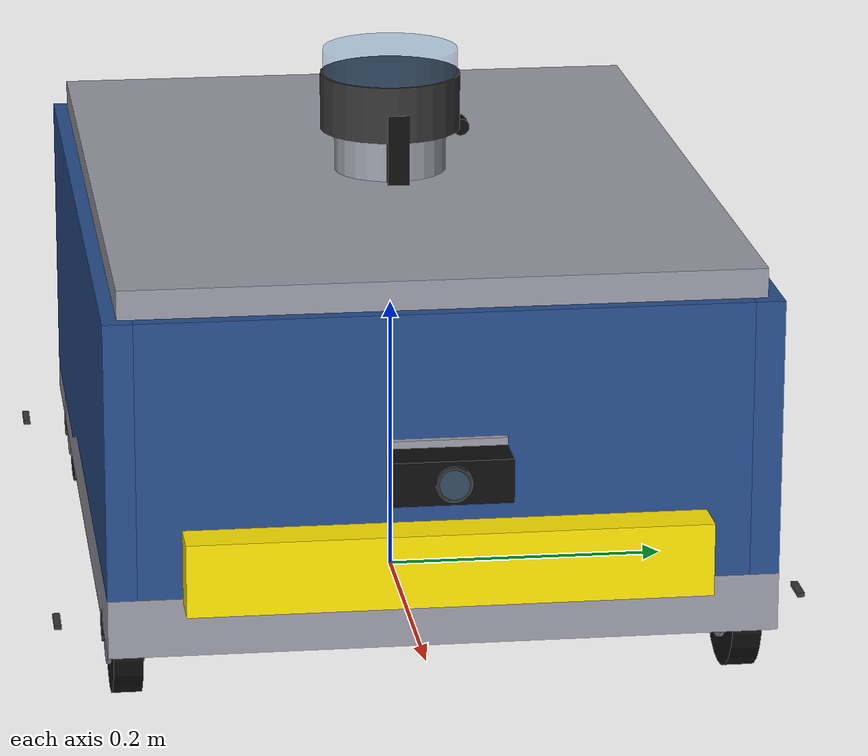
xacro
<?xml version="1.0"?>
<robot name="warehouse_amr" xmlns:xacro="http://www.ros.org/wiki/xacro">
  <!-- Arguments -->
  <xacro:arg name="drive_mode" default="diff"/>
  <!-- Include all macro files -->
  <xacro:include filename="$(find amr_description)/urdf/materials.xacro"/>
  <xacro:include filename="$(find amr_description)/urdf/wheel_macro.xacro"/>
  <xacro:include filename="$(find amr_description)/urdf/sensor_macro.xacro"/>

  <!-- Robot Dimensions (properties) -->
  <xacro:property name="chassis_length" value="0.6"/>
  <xacro:property name="chassis_width" value="0.45"/>
  <xacro:property name="chassis_height" value="0.25"/>
  <xacro:property name="chassis_mass" value="15.0"/>

  <xacro:property name="wheel_radius" value="0.05"/>
  <xacro:property name="wheel_width" value="0.02"/>
  <xacro:property name="wheel_separation" value="0.4"/>
  <xacro:property name="wheelbase" value="0.45"/>

  <!-- Calculated offsets -->
  <xacro:property name="wheel_x_offset_front" value="${wheelbase/2}"/>
  <xacro:property name="wheel_x_offset_rear" value="${-wheelbase/2}"/>
  <xacro:property name="wheel_y_offset" value="${wheel_separation/2 + wheel_width/2}"/>
  <xacro:property name="wheel_z_offset" value="0"/>

  <!-- Drive Mode Configuration -->
  <xacro:property name="drive_mode" value="$(arg drive_mode)"/>

  <xacro:if value="${drive_mode == 'mecanum'}">
    <xacro:property name="wheel_mu1" value="1.5"/>
    <xacro:property name="wheel_mu2" value="0.0"/>
  </xacro:if>
  <xacro:unless value="${drive_mode == 'mecanum'}">
    <xacro:property name="wheel_mu1" value="1.0"/>
    <xacro:property name="wheel_mu2" value="1.0"/>
  </xacro:unless>

  <!-- Base Footprint Link (ground projection)    -->
  <link name="base_footprint"/>

  <joint name="base_footprint_joint" type="fixed">
    <origin xyz="0 0 ${wheel_radius}" rpy="0 0 0"/>
    <parent link="base_footprint"/>
    <child link="base_link"/>
  </joint>

  <!-- Base Link (Chassis)                        -->
  <link name="base_link">
    <!-- Main chassis base plate -->
    <visual name="base_plate">
      <origin xyz="0 0 0.02" rpy="0 0 0"/>
      <geometry>
        <box size="${chassis_length} ${chassis_width} 0.04"/>
      </geometry>
      <material name="metallic_grey"/>
    </visual>

    <!-- Chassis side panels -->
    <visual name="side_panel_left">
      <origin xyz="0 ${chassis_width/2 - 0.01} ${chassis_height/2}" rpy="0 0 0"/>
      <geometry>
        <box size="${chassis_length} 0.02 ${chassis_height - 0.04}"/>
      </geometry>
      <material name="metallic_blue"/>
    </visual>

    <visual name="side_panel_right">
      <origin xyz="0 ${-chassis_width/2 + 0.01} ${chassis_height/2}" rpy="0 0 0"/>
      <geometry>
        <box size="${chassis_length} 0.02 ${chassis_height - 0.04}"/>
      </geometry>
      <material name="metallic_blue"/>
    </visual>

    <!-- Front and rear panels -->
    <visual name="front_panel">
      <origin xyz="${chassis_length/2 - 0.01} 0 ${chassis_height/2}" rpy="0 0 0"/>
      <geometry>
        <box size="0.02 ${chassis_width - 0.04} ${chassis_height - 0.04}"/>
      </geometry>
      <material name="metallic_blue"/>
    </visual>

    <visual name="rear_panel">
      <origin xyz="${-chassis_length/2 + 0.01} 0 ${chassis_height/2}" rpy="0 0 0"/>
      <geometry>
        <box size="0.02 ${chassis_width - 0.04} ${chassis_height - 0.04}"/>
      </geometry>
      <material name="metallic_blue"/>
    </visual>

    <!-- Top cover plate -->
    <visual name="top_cover">
      <origin xyz="0 0 ${chassis_height - 0.02}" rpy="0 0 0"/>
      <geometry>
        <box size="${chassis_length - 0.02} ${chassis_width - 0.02} 0.04"/>
      </geometry>
      <material name="metallic_grey"/>
    </visual>

    <!-- Safety bumpers -->
    <visual name="front_bumper">
      <origin xyz="${chassis_length/2 + 0.015} 0 ${chassis_height/4}" rpy="0 0 0"/>
      <geometry>
        <box size="0.03 ${chassis_width - 0.1} 0.05"/>
      </geometry>
      <material name="yellow_warning"/>
    </visual>

    <visual name="rear_bumper">
      <origin xyz="${-chassis_length/2 - 0.015} 0 ${chassis_height/4}" rpy="0 0 0"/>
      <geometry>
        <box size="0.03 ${chassis_width - 0.1} 0.05"/>
      </geometry>
      <material name="yellow_warning"/>
    </visual>

    <!-- Cable conduits (decorative) -->
    <visual name="cable_conduit_left">
      <origin xyz="0 ${chassis_width/2 - 0.03} 0.06" rpy="0 0 0"/>
      <geometry>
        <box size="${chassis_length - 0.1} 0.015 0.015"/>
      </geometry>
      <material name="black"/>
    </visual>

    <visual name="cable_conduit_right">
      <origin xyz="0 ${-chassis_width/2 + 0.03} 0.06" rpy="0 0 0"/>
      <geometry>
        <box size="${chassis_length - 0.1} 0.015 0.015"/>
      </geometry>
      <material name="black"/>
    </visual>

    <!-- Electronics bay indicator -->
    <visual name="electronics_bay">
      <origin xyz="-0.1 0 ${chassis_height/2}" rpy="0 0 0"/>
      <geometry>
        <box size="0.2 0.15 ${chassis_height - 0.08}"/>
      </geometry>
      <material name="dark_grey"/>
    </visual>

    <!-- Collision (simplified) -->
    <collision>
      <origin xyz="0 0 ${chassis_height/2}" rpy="0 0 0"/>
      <geometry>
        <box size="${chassis_length} ${chassis_width} ${chassis_height}"/>
      </geometry>
    </collision>

    <inertial>
      <origin xyz="0 0 ${chassis_height/2}" rpy="0 0 0"/>
      <mass value="${chassis_mass}"/>
      <inertia
        ixx="${(chassis_mass/12) * (chassis_width*chassis_width + chassis_height*chassis_height)}"
        ixy="0.0"
        ixz="0.0"
        iyy="${(chassis_mass/12) * (chassis_length*chassis_length + chassis_height*chassis_height)}"
        iyz="0.0"
        izz="${(chassis_mass/12) * (chassis_length*chassis_length + chassis_width*chassis_width)}"/>
    </inertial>
  </link>

  <!-- Gazebo properties for base_link (low friction to prevent dragging) -->
  <gazebo reference="base_link">
    <mu1>0.000002</mu1>
    <mu2>0.000002</mu2>
  </gazebo>

  <!-- Wheels with Mecanum Friction               -->

  <!-- Front Left Wheel - friction direction (1, -1, 0) -->
  <xacro:wheel prefix="front_left" parent="base_link" friction_dir="1 -1 0" mu1="${wheel_mu1}" mu2="${wheel_mu2}">
    <origin xyz="${wheel_x_offset_front} ${wheel_y_offset} ${wheel_z_offset}" rpy="0 0 0"/>
  </xacro:wheel>

  <!-- Front Right Wheel - friction direction (1, 1, 0) -->
  <xacro:wheel prefix="front_right" parent="base_link" friction_dir="1 1 0" mu1="${wheel_mu1}" mu2="${wheel_mu2}">
    <origin xyz="${wheel_x_offset_front} ${-wheel_y_offset} ${wheel_z_offset}" rpy="0 0 0"/>
  </xacro:wheel>

  <!-- Rear Left Wheel - friction direction (1, 1, 0) -->
  <xacro:wheel prefix="rear_left" parent="base_link" friction_dir="1 1 0" mu1="${wheel_mu1}" mu2="${wheel_mu2}">
    <origin xyz="${wheel_x_offset_rear} ${wheel_y_offset} ${wheel_z_offset}" rpy="0 0 0"/>
  </xacro:wheel>

  <!-- Rear Right Wheel - friction direction (1, -1, 0) -->
  <xacro:wheel prefix="rear_right" parent="base_link" friction_dir="1 -1 0" mu1="${wheel_mu1}" mu2="${wheel_mu2}">
    <origin xyz="${wheel_x_offset_rear} ${-wheel_y_offset} ${wheel_z_offset}" rpy="0 0 0"/>
  </xacro:wheel>

  <!-- Sensors                                    -->

  <!-- LIDAR - mounted on top center of chassis -->
  <xacro:lidar_sensor parent="base_link">
    <origin xyz="0 0 ${chassis_height + 0.035}" rpy="0 0 0"/>
  </xacro:lidar_sensor>

  <!-- IMU - near geometric center inside chassis -->
  <xacro:imu_sensor parent="base_link">
    <origin xyz="0 0 ${chassis_height/2}" rpy="0 0 0"/>
  </xacro:imu_sensor>

  <!-- Camera - front-mounted on chassis -->
  <xacro:camera_sensor parent="base_link">
    <origin xyz="${chassis_length/2 + 0.015} 0 ${chassis_height/2}" rpy="0 0 0"/>
  </xacro:camera_sensor>

  <!-- Gazebo Plugins for gz sim (Gazebo Harmonic) -->

  <!-- Mecanum Drive Plugin                      -->
  <xacro:if value="${drive_mode == 'mecanum'}">
    <gazebo>
      <plugin filename="gz-sim-mecanum-drive-system" name="gz::sim::systems::MecanumDrive">
        <!-- Topic for velocity commands -->
        <topic>cmd_vel</topic>

        <!-- Wheel joint names (must match your URDF) -->
        <front_left_joint>wheel_front_left_joint</front_left_joint>
        <front_right_joint>wheel_front_right_joint</front_right_joint>
        <back_left_joint>wheel_rear_left_joint</back_left_joint>
        <back_right_joint>wheel_rear_right_joint</back_right_joint>

        <!-- Robot physical parameters -->
        <wheel_separation>${wheel_separation}</wheel_separation>
        <wheelbase>${wheelbase}</wheelbase>
        <wheel_radius>${wheel_radius}</wheel_radius>

        <!-- Control limits -->
        <min_acceleration>-5</min_acceleration>
        <max_acceleration>5</max_acceleration>

        <!-- Odometry configuration -->
        <odom_topic>odom</odom_topic>
        <frame_id>odom</frame_id>
        <child_frame_id>base_footprint</child_frame_id>
        <odom_publish_frequency>50</odom_publish_frequency>
      </plugin>
    </gazebo>
  </xacro:if>

  <!-- Differential Drive Plugin                  -->
  <xacro:unless value="${drive_mode == 'mecanum'}">
    <gazebo>
      <plugin filename="gz-sim-diff-drive-system" name="gz::sim::systems::DiffDrive">
        <!-- Topic for velocity commands -->
        <topic>cmd_vel</topic>

        <!-- Wheel joint names -->
        <left_joint>wheel_front_left_joint</left_joint>
        <left_joint>wheel_rear_left_joint</left_joint>
        <right_joint>wheel_front_right_joint</right_joint>
        <right_joint>wheel_rear_right_joint</right_joint>

        <!-- Robot physical parameters -->
        <wheel_separation>${wheel_separation}</wheel_separation>
        <wheel_radius>${wheel_radius}</wheel_radius>

        <!-- Control limits -->
        <min_acceleration>-5</min_acceleration>
        <max_acceleration>5</max_acceleration>

        <!-- Odometry configuration -->
        <odom_topic>odom</odom_topic>
        <frame_id>odom</frame_id>
        <child_frame_id>base_footprint</child_frame_id>
        <odom_publish_frequency>50</odom_publish_frequency>
      </plugin>
    </gazebo>
  </xacro:unless>

  <!-- Joint State Publisher Plugin               -->
  <gazebo>
    <plugin filename="gz-sim-joint-state-publisher-system" name="gz::sim::systems::JointStatePublisher">
      <topic>joint_states</topic>
      <update_rate>50</update_rate>
      <joint_name>wheel_front_left_joint</joint_name>
      <joint_name>wheel_front_right_joint</joint_name>
      <joint_name>wheel_rear_left_joint</joint_name>
      <joint_name>wheel_rear_right_joint</joint_name>
    </plugin>
  </gazebo>

</robot>

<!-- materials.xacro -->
<robot xmlns:xacro="http://www.ros.org/wiki/xacro">

  <!-- Define material colors for visualization -->

  <!-- Basic Colors -->
  <material name="black">
    <color rgba="0.05 0.05 0.05 1.0"/>
  </material>

  <material name="dark_grey">
    <color rgba="0.2 0.2 0.2 1.0"/>
  </material>

  <material name="light_grey">
    <color rgba="0.7 0.7 0.7 1.0"/>
  </material>

  <material name="white">
    <color rgba="0.95 0.95 0.95 1.0"/>
  </material>

  <material name="red">
    <color rgba="0.8 0.0 0.0 1.0"/>
  </material>

  <material name="orange">
    <color rgba="1.0 0.5 0.0 1.0"/>
  </material>

  <material name="yellow">
    <color rgba="1.0 1.0 0.0 1.0"/>
  </material>

  <material name="green">
    <color rgba="0.0 0.8 0.0 1.0"/>
  </material>

  <material name="blue">
    <color rgba="0.0 0.0 0.8 1.0"/>
  </material>

  <!-- Metallic Materials (with slight reflective appearance) -->
  <material name="metallic_grey">
    <color rgba="0.6 0.6 0.65 1.0"/>
  </material>

  <material name="metallic_blue">
    <color rgba="0.15 0.3 0.55 1.0"/>
  </material>

  <material name="brushed_aluminum">
    <color rgba="0.75 0.77 0.78 1.0"/>
  </material>

  <material name="chrome">
    <color rgba="0.85 0.85 0.85 1.0"/>
  </material>

  <!-- Plastic Materials -->
  <material name="plastic_black">
    <color rgba="0.1 0.1 0.1 1.0"/>
  </material>

  <material name="plastic_grey">
    <color rgba="0.45 0.45 0.45 1.0"/>
  </material>

  <material name="plastic_white">
    <color rgba="0.9 0.9 0.9 1.0"/>
  </material>

  <!-- Rubber Materials -->
  <material name="rubber_black">
    <color rgba="0.08 0.08 0.08 1.0"/>
  </material>

  <material name="rubber_grey">
    <color rgba="0.25 0.25 0.25 1.0"/>
  </material>

  <!-- Warning/Safety Colors -->
  <material name="yellow_warning">
    <color rgba="1.0 0.9 0.0 1.0"/>
  </material>

  <material name="orange_warning">
    <color rgba="1.0 0.4 0.0 1.0"/>
  </material>

  <material name="red_warning">
    <color rgba="0.9 0.0 0.0 1.0"/>
  </material>

  <!-- Transparent Materials -->
  <material name="transparent_blue">
    <color rgba="0.2 0.5 0.8 0.3"/>
  </material>

  <material name="transparent_green">
    <color rgba="0.2 0.8 0.2 0.3"/>
  </material>

  <material name="transparent_grey">
    <color rgba="0.5 0.5 0.5 0.4"/>
  </material>

  <!-- LED/Indicator Colors -->
  <material name="led_green">
    <color rgba="0.0 1.0 0.0 1.0"/>
  </material>

  <material name="led_red">
    <color rgba="1.0 0.0 0.0 1.0"/>
  </material>

  <material name="led_blue">
    <color rgba="0.0 0.5 1.0 1.0"/>
  </material>

  <!-- Industrial Colors -->
  <material name="industrial_yellow">
    <color rgba="0.95 0.85 0.1 1.0"/>
  </material>

  <material name="industrial_orange">
    <color rgba="0.95 0.45 0.05 1.0"/>
  </material>

  <material name="industrial_blue">
    <color rgba="0.1 0.3 0.6 1.0"/>
  </material>

  <!-- Gazebo material references for realistic rendering -->
  <gazebo reference="base_link">
    <material>Gazebo/Grey</material>
  </gazebo>

  <!-- Additional Gazebo materials for sensors and wheels -->
  <gazebo reference="wheel_front_left">
    <material>Gazebo/Black</material>
  </gazebo>

  <gazebo reference="wheel_front_right">
    <material>Gazebo/Black</material>
  </gazebo>

  <gazebo reference="wheel_rear_left">
    <material>Gazebo/Black</material>
  </gazebo>

  <gazebo reference="wheel_rear_right">
    <material>Gazebo/Black</material>
  </gazebo>

  <gazebo reference="lidar_link">
    <material>Gazebo/DarkGrey</material>
  </gazebo>

  <gazebo reference="camera_link">
    <material>Gazebo/Black</material>
  </gazebo>

  <gazebo reference="imu_link">
    <material>Gazebo/Blue</material>
  </gazebo>

</robot>

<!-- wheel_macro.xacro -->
<robot xmlns:xacro="http://www.ros.org/wiki/xacro" xmlns:gz="http://gazebosim.org/schema">

  <xacro:macro name="wheel" params="prefix parent friction_dir mu1:=1.5 mu2:=0.0 *origin">

    <!-- Wheel properties -->
    <xacro:property name="wheel_radius" value="0.05"/>
    <xacro:property name="wheel_width" value="0.02"/>
    <xacro:property name="wheel_mass" value="0.5"/>

    <!-- Wheel link -->
    <link name="wheel_${prefix}">
      <!-- Main tire -->
      <visual name="tire">
        <origin xyz="0 0 0" rpy="${pi/2} 0 0"/>
        <geometry>
          <cylinder radius="${wheel_radius}" length="${wheel_width}"/>
        </geometry>
        <material name="rubber_black"/>
      </visual>

      <!-- Wheel hub/rim -->
      <visual name="hub">
        <origin xyz="0 0 0" rpy="${pi/2} 0 0"/>
        <geometry>
          <cylinder radius="${wheel_radius * 0.6}" length="${wheel_width + 0.005}"/>
        </geometry>
        <material name="metallic_grey"/>
      </visual>

      <!-- Hub center cap -->
      <visual name="hub_cap">
        <origin xyz="0 0 0" rpy="${pi/2} 0 0"/>
        <geometry>
          <cylinder radius="${wheel_radius * 0.3}" length="${wheel_width + 0.01}"/>
        </geometry>
        <material name="dark_grey"/>
      </visual>

      <!-- Tread grooves indicators (decorative boxes) -->
      <visual name="tread_1">
        <origin xyz="${wheel_radius * 0.9} 0 0" rpy="0 ${pi/2} 0"/>
        <geometry>
          <box size="${wheel_width * 1.2} 0.003 0.005"/>
        </geometry>
        <material name="dark_grey"/>
      </visual>

      <visual name="tread_2">
        <origin xyz="0 ${wheel_radius * 0.9} 0" rpy="${pi/2} 0 0"/>
        <geometry>
          <box size="${wheel_width * 1.2} 0.003 0.005"/>
        </geometry>
        <material name="dark_grey"/>
      </visual>

      <visual name="tread_3">
        <origin xyz="${-wheel_radius * 0.9} 0 0" rpy="0 ${pi/2} 0"/>
        <geometry>
          <box size="${wheel_width * 1.2} 0.003 0.005"/>
        </geometry>
        <material name="dark_grey"/>
      </visual>

      <visual name="tread_4">
        <origin xyz="0 ${-wheel_radius * 0.9} 0" rpy="${pi/2} 0 0"/>
        <geometry>
          <box size="${wheel_width * 1.2} 0.003 0.005"/>
        </geometry>
        <material name="dark_grey"/>
      </visual>

      <!-- Collision with sphere for better mecanum simulation -->
      <collision>
        <origin xyz="0 0 0" rpy="0 0 0"/>
        <geometry>
          <sphere radius="${wheel_radius}"/>
        </geometry>
      </collision>

      <inertial>
        <origin xyz="0 0 0" rpy="0 0 0"/>
        <mass value="${wheel_mass}"/>
        <inertia
          ixx="${(wheel_mass/12) * (3*wheel_radius*wheel_radius + wheel_width*wheel_width)}"
          ixy="0.0"
          ixz="0.0"
          iyy="${(wheel_mass/12) * (3*wheel_radius*wheel_radius + wheel_width*wheel_width)}"
          iyz="0.0"
          izz="${(wheel_mass/2) * wheel_radius * wheel_radius}"/>
      </inertial>
    </link>

    <!-- Wheel joint -->
    <joint name="wheel_${prefix}_joint" type="continuous">
      <xacro:insert_block name="origin"/>
      <parent link="${parent}"/>
      <child link="wheel_${prefix}"/>
      <axis xyz="0 1 0"/>
      <dynamics damping="0.05" friction="0.05"/>
    </joint>

    <!-- Gazebo properties for wheel physics -->
    <gazebo reference="wheel_${prefix}">
      <material>Gazebo/Black</material>

      <!-- Wheel friction properties -->
      <collision>
        <surface>
          <friction>
            <ode>
              <mu>${mu1}</mu>
              <mu2>${mu2}</mu2>
              <fdir1 gz:expressed_in="base_footprint">${friction_dir}</fdir1>
            </ode>
          </friction>
        </surface>
      </collision>
    </gazebo>

  </xacro:macro>

</robot>

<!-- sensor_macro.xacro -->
<robot xmlns:xacro="http://www.ros.org/wiki/xacro">

  <!--
    LIDAR Sensor Macro
    Creates a 2D LIDAR sensor link with mounting
    Parameters:
      - parent: parent link name
      - xyz: position offset [x, y, z]
  -->
  <xacro:macro name="lidar_sensor" params="parent *origin">

    <link name="lidar_link">
      <!-- LIDAR base mount -->
      <visual name="base_mount">
        <origin xyz="0 0 -0.02" rpy="0 0 0"/>
        <geometry>
          <cylinder radius="0.04" length="0.03"/>
        </geometry>
        <material name="metallic_grey"/>
      </visual>

      <!-- Main LIDAR housing -->
      <visual name="main_housing">
        <origin xyz="0 0 0.015" rpy="0 0 0"/>
        <geometry>
          <cylinder radius="0.05" length="0.04"/>
        </geometry>
        <material name="dark_grey"/>
      </visual>

      <!-- LIDAR dome/window -->
      <visual name="sensor_dome">
        <origin xyz="0 0 0.04" rpy="0 0 0"/>
        <geometry>
          <cylinder radius="0.048" length="0.025"/>
        </geometry>
        <material name="transparent_blue"/>
      </visual>

      <!-- Mounting brackets -->
      <visual name="bracket_1">
        <origin xyz="0.045 0 -0.01" rpy="0 0 0"/>
        <geometry>
          <box size="0.01 0.015 0.05"/>
        </geometry>
        <material name="black"/>
      </visual>

      <visual name="bracket_2">
        <origin xyz="-0.045 0 -0.01" rpy="0 0 0"/>
        <geometry>
          <box size="0.01 0.015 0.05"/>
        </geometry>
        <material name="black"/>
      </visual>

      <!-- Cable connection port -->
      <visual name="cable_port">
        <origin xyz="0 0.05 -0.005" rpy="0 ${pi/2} 0"/>
        <geometry>
          <cylinder radius="0.006" length="0.015"/>
        </geometry>
        <material name="black"/>
      </visual>

      <collision>
        <origin xyz="0 0 0" rpy="0 0 0"/>
        <geometry>
          <cylinder radius="0.05" length="0.07"/>
        </geometry>
      </collision>

      <inertial>
        <origin xyz="0 0 0" rpy="0 0 0"/>
        <mass value="0.125"/>
        <inertia
          ixx="0.0001"
          ixy="0.0"
          ixz="0.0"
          iyy="0.0001"
          iyz="0.0"
          izz="0.0001"/>
      </inertial>
    </link>

    <joint name="lidar_joint" type="fixed">
      <xacro:insert_block name="origin"/>
      <parent link="${parent}"/>
      <child link="lidar_link"/>
    </joint>

    <!-- Gazebo LIDAR sensor plugin for gz sim (Gazebo Harmonic) -->
    <gazebo reference="lidar_link">
      <material>Gazebo/DarkGrey</material>
      <sensor name="gpu_lidar" type="gpu_lidar">
        <pose>0 0 0 0 0 0</pose>
        <always_on>1</always_on>
        <update_rate>10</update_rate>
        <visualize>true</visualize>
        <topic>scan</topic>
        <gz_frame_id>lidar_link</gz_frame_id>
        <lidar>
          <scan>
            <horizontal>
              <samples>720</samples>
              <resolution>1</resolution>
              <min_angle>-3.14156</min_angle>
              <max_angle>3.14156</max_angle>
            </horizontal>
          </scan>
          <range>
            <min>0.05</min>
            <max>10.0</max>
            <resolution>0.01</resolution>
          </range>
          <noise>
            <type>gaussian</type>
            <mean>0.0</mean>
            <stddev>0.01</stddev>
          </noise>
        </lidar>
      </sensor>
    </gazebo>

  </xacro:macro>

  <!--
    IMU Sensor Macro
    Creates an IMU sensor link
    Parameters:
      - parent: parent link name
      - xyz: position offset [x, y, z]
  -->
  <xacro:macro name="imu_sensor" params="parent *origin">

    <link name="imu_link">
      <visual>
        <origin xyz="0 0 0" rpy="0 0 0"/>
        <geometry>
          <box size="0.03 0.03 0.01"/>
        </geometry>
        <material name="blue"/>
      </visual>

      <collision>
        <origin xyz="0 0 0" rpy="0 0 0"/>
        <geometry>
          <box size="0.03 0.03 0.01"/>
        </geometry>
      </collision>

      <inertial>
        <origin xyz="0 0 0" rpy="0 0 0"/>
        <mass value="0.015"/>
        <inertia
          ixx="0.00001"
          ixy="0.0"
          ixz="0.0"
          iyy="0.00001"
          iyz="0.0"
          izz="0.00001"/>
      </inertial>
    </link>

    <joint name="imu_joint" type="fixed">
      <xacro:insert_block name="origin"/>
      <parent link="${parent}"/>
      <child link="imu_link"/>
    </joint>

    <!-- Gazebo IMU sensor plugin placeholder -->
    <gazebo reference="imu_link">
      <material>Gazebo/Blue</material>
      <sensor name="imu" type="imu">
        <always_on>1</always_on>
        <update_rate>50</update_rate>
        <topic>imu</topic>
        <gz_frame_id>imu_link</gz_frame_id>
      </sensor>
    </gazebo>

  </xacro:macro>

  <!--
    Camera Sensor Macro
    Creates an RGB camera sensor link
    Parameters:
      - parent: parent link name
      - xyz: position offset [x, y, z]
  -->
  <xacro:macro name="camera_sensor" params="parent *origin">

    <link name="camera_link">
      <!-- Camera housing -->
      <visual name="camera_body">
        <origin xyz="0 0 0" rpy="0 0 0"/>
        <geometry>
          <box size="0.04 0.08 0.03"/>
        </geometry>
        <material name="black"/>
      </visual>

      <!-- Camera lens -->
      <visual name="lens">
        <origin xyz="0.021 0 0" rpy="0 ${pi/2} 0"/>
        <geometry>
          <cylinder radius="0.012" length="0.005"/>
        </geometry>
        <material name="dark_grey"/>
      </visual>

      <!-- Lens glass -->
      <visual name="lens_glass">
        <origin xyz="0.024 0 0" rpy="0 ${pi/2} 0"/>
        <geometry>
          <cylinder radius="0.01" length="0.002"/>
        </geometry>
        <material name="transparent_blue"/>
      </visual>

      <!-- Status LED indicator -->
      <visual name="status_led">
        <origin xyz="0.015 0.025 0.01" rpy="0 0 0"/>
        <geometry>
          <sphere radius="0.002"/>
        </geometry>
        <material name="green"/>
      </visual>

      <!-- Mounting bracket -->
      <visual name="mount_bracket">
        <origin xyz="-0.015 0 0" rpy="0 0 0"/>
        <geometry>
          <box size="0.01 0.08 0.04"/>
        </geometry>
        <material name="metallic_grey"/>
      </visual>

      <!-- Cable connector -->
      <visual name="cable_connector">
        <origin xyz="-0.02 0 -0.01" rpy="0 0 0"/>
        <geometry>
          <box size="0.015 0.02 0.01"/>
        </geometry>
        <material name="dark_grey"/>
      </visual>

      <collision>
        <origin xyz="0 0 0" rpy="0 0 0"/>
        <geometry>
          <box size="0.03 0.1 0.03"/>
        </geometry>
      </collision>

      <inertial>
        <origin xyz="0 0 0" rpy="0 0 0"/>
        <mass value="0.1"/>
        <inertia
          ixx="0.00001"
          ixy="0.0"
          ixz="0.0"
          iyy="0.00001"
          iyz="0.0"
          izz="0.00001"/>
      </inertial>
    </link>

    <joint name="camera_joint" type="fixed">
      <xacro:insert_block name="origin"/>
      <parent link="${parent}"/>
      <child link="camera_link"/>
    </joint>

    <!-- Camera optical frame (standard ROS convention) -->
    <link name="camera_link_optical"/>

    <joint name="camera_optical_joint" type="fixed">
      <origin xyz="0 0 0" rpy="${-pi/2} 0 ${-pi/2}"/>
      <parent link="camera_link"/>
      <child link="camera_link_optical"/>
    </joint>

    <!-- Gazebo camera sensor plugin placeholder -->
    <gazebo reference="camera_link">
      <material>Gazebo/Red</material>
      <sensor name="camera" type="camera">
        <always_on>1</always_on>
        <update_rate>20</update_rate>
        <visualize>true</visualize>
        <topic>camera/image_raw</topic>
        <camera name="front_camera">
          <horizontal_fov>1.3962634</horizontal_fov>
          <image>
            <width>640</width>
            <height>480</height>
            <format>R8G8B8</format>
          </image>
          <clip>
            <near>0.1</near>
            <far>15</far>
          </clip>
          <noise>
            <type>gaussian</type>
            <mean>0.0</mean>
            <stddev>0.007</stddev>
          </noise>

          <optical_frame_id>camera_link_optical</optical_frame_id>
          <camera_info_topic>camera/camera_info</camera_info_topic>
        </camera>
      </sensor>
    </gazebo>

  </xacro:macro>

</robot>
